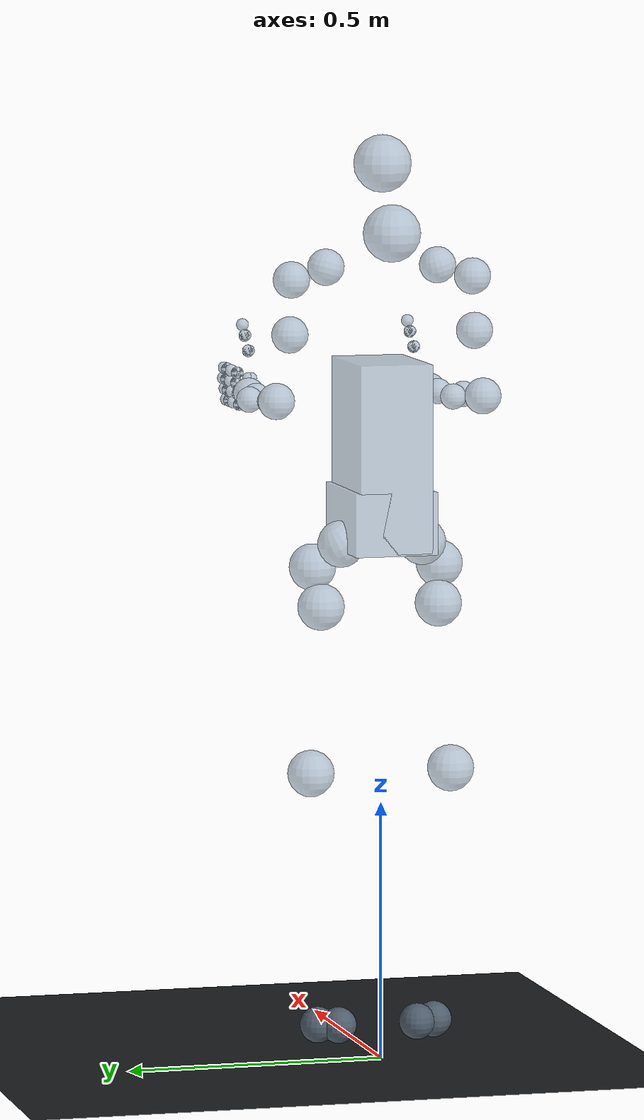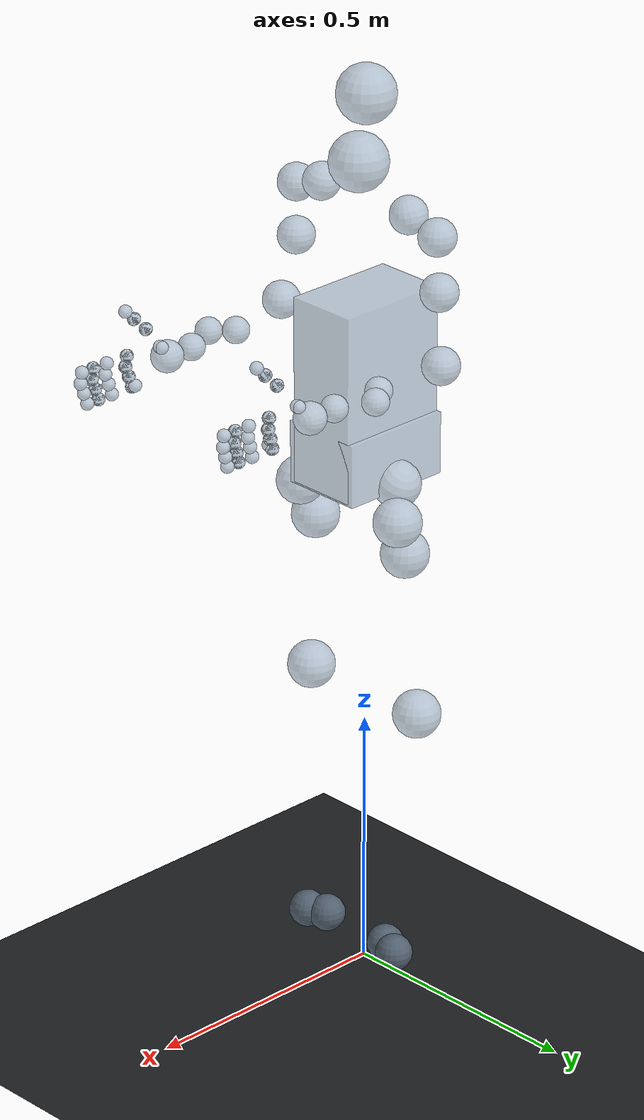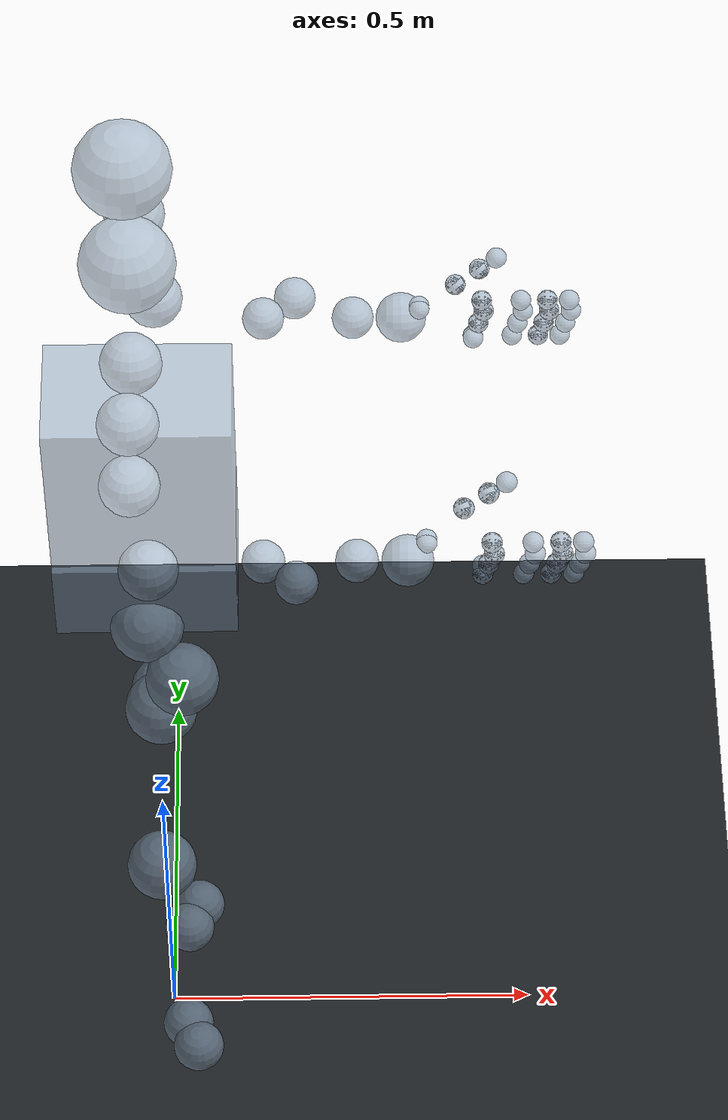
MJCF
<?xml version='1.0' encoding='utf-8'?>
<mujoco model="h2_with_sharpa">
  <compiler angle="radian" />
  <option timestep="0.008333333" gravity="0 0 -9.81" />
  <default>
    <joint damping="0.3" armature="0.01" />
    <geom friction="0.8 0.01 0.001" density="250" />
  </default>
  <worldbody>
    <geom name="floor" type="plane" size="3 3 0.02" rgba="0.12 0.13 0.14 1" />
    <body name="pelvis" pos="0 0 1.05">
      <freejoint name="pelvis_freejoint" />
      <geom name="pelvis_proxy" type="box" size="0.11 0.08 0.06" rgba="0.55 0.65 0.75 0.55" />
      <body name="left_hip_pitch_link" pos="0 0.08038 -0.046407" quat="0.9659256678 -0.2588196364 0 0">
        <joint name="left_hip_pitch_joint" type="hinge" axis="0 1 0" damping="0.3" armature="0.01" limited="true" range="-2.4525975 2.7754225" />
        <geom name="left_hip_pitch_link_proxy" type="sphere" size="0.045" rgba="0.55 0.65 0.75 0.55" />
        <body name="left_hip_roll_link" pos="0.041774 0.0635 -0.019" quat="0.9659256678 0.2588196364 0 0">
          <joint name="left_hip_roll_joint" type="hinge" axis="1 0 0" damping="0.3" armature="0.01" limited="true" range="-0.467441 2.1688605" />
          <geom name="left_hip_roll_link_proxy" type="sphere" size="0.045" rgba="0.55 0.65 0.75 0.55" />
          <body name="left_hip_yaw_link" pos="-0.028187 -0.0095 -0.0737" quat="1 0 0 0">
            <joint name="left_hip_yaw_joint" type="hinge" axis="0 0 1" damping="0.3" armature="0.01" limited="true" range="-2.827 2.827" />
            <geom name="left_hip_yaw_link_proxy" type="sphere" size="0.045" rgba="0.55 0.65 0.75 0.55" />
            <body name="left_knee_link" pos="-0.010308 0.022549 -0.31959" quat="1 0 0 0">
              <joint name="left_knee_joint" type="hinge" axis="0 1 0" damping="0.3" armature="0.01" limited="true" range="-0.08725 2.53025" />
              <geom name="left_knee_link_proxy" type="sphere" size="0.045" rgba="0.55 0.65 0.75 0.55" />
              <body name="left_ankle_roll_link" pos="0.032719 -0.023002 -0.49662" quat="1 0 0 0">
                <joint name="left_ankle_roll_joint" type="hinge" axis="1 0 0" damping="0.3" armature="0.01" limited="true" range="-0.3490658503 0.2967059728" />
                <geom name="left_ankle_roll_link_proxy" type="sphere" size="0.035" rgba="0.55 0.65 0.75 0.55" />
                <body name="left_ankle_pitch_link" pos="-0.014516 -0.0373 0" quat="1 0 0 0">
                  <joint name="left_ankle_pitch_joint" type="hinge" axis="0 1 0" damping="0.3" armature="0.01" limited="true" range="-1.134464014 0.6108652381" />
                  <geom name="left_ankle_pitch_link_proxy" type="sphere" size="0.035" rgba="0.55 0.65 0.75 0.55" />
                </body>
              </body>
            </body>
          </body>
        </body>
      </body>
      <body name="right_hip_pitch_link" pos="0 -0.08038 -0.046407" quat="0.9659256678 0.2588196364 0 0">
        <joint name="right_hip_pitch_joint" type="hinge" axis="0 1 0" damping="0.3" armature="0.01" limited="true" range="-2.4525975 2.7754225" />
        <geom name="right_hip_pitch_link_proxy" type="sphere" size="0.045" rgba="0.55 0.65 0.75 0.55" />
        <body name="right_hip_roll_link" pos="0.041774 -0.0635 -0.019" quat="0.9659256678 -0.2588196364 0 0">
          <joint name="right_hip_roll_joint" type="hinge" axis="1 0 0" damping="0.3" armature="0.01" limited="true" range="-2.1688605 0.467441" />
          <geom name="right_hip_roll_link_proxy" type="sphere" size="0.045" rgba="0.55 0.65 0.75 0.55" />
          <body name="right_hip_yaw_link" pos="-0.028187 0.0095 -0.0737" quat="1 0 0 0">
            <joint name="right_hip_yaw_joint" type="hinge" axis="0 0 1" damping="0.3" armature="0.01" limited="true" range="-2.827 2.827" />
            <geom name="right_hip_yaw_link_proxy" type="sphere" size="0.045" rgba="0.55 0.65 0.75 0.55" />
            <body name="right_knee_link" pos="-0.010308 -0.022549 -0.31959" quat="1 0 0 0">
              <joint name="right_knee_joint" type="hinge" axis="0 1 0" damping="0.3" armature="0.01" limited="true" range="-0.08725 2.53025" />
              <geom name="right_knee_link_proxy" type="sphere" size="0.045" rgba="0.55 0.65 0.75 0.55" />
              <body name="right_ankle_roll_link" pos="0.032719 0.023002 -0.49662" quat="1 0 0 0">
                <joint name="right_ankle_roll_joint" type="hinge" axis="1 0 0" damping="0.3" armature="0.01" limited="true" range="-0.2967059728 0.3490658503" />
                <geom name="right_ankle_roll_link_proxy" type="sphere" size="0.035" rgba="0.55 0.65 0.75 0.55" />
                <body name="right_ankle_pitch_link" pos="-0.014516 0.0373 0" quat="1 0 0 0">
                  <joint name="right_ankle_pitch_joint" type="hinge" axis="0 1 0" damping="0.3" armature="0.01" limited="true" range="-1.134464014 0.6108652381" />
                  <geom name="right_ankle_pitch_link_proxy" type="sphere" size="0.035" rgba="0.55 0.65 0.75 0.55" />
                </body>
              </body>
            </body>
          </body>
        </body>
      </body>
      <body name="waist_yaw_link" pos="0 0 0.090537" quat="1 0 0 0">
        <joint name="waist_yaw_joint" type="hinge" axis="0 0 1" damping="0.3" armature="0.01" limited="true" range="-1.7453 1.7453" />
        <geom name="waist_yaw_link_proxy" type="sphere" size="0.025" rgba="0.55 0.65 0.75 0.55" />
        <body name="waist_roll_link" pos="0 0 0.0325" quat="1 0 0 0">
          <joint name="waist_roll_joint" type="hinge" axis="1 0 0" damping="0.3" armature="0.01" limited="true" range="-0.5236 0.5236" />
          <geom name="waist_roll_link_proxy" type="sphere" size="0.025" rgba="0.55 0.65 0.75 0.55" />
          <body name="torso_link" pos="0 0 0" quat="1 0 0 0">
            <joint name="waist_pitch_joint" type="hinge" axis="0 1 0" damping="0.3" armature="0.01" limited="true" range="-0.43633 0.5236" />
            <geom name="torso_link_proxy" type="box" size="0.11 0.07 0.18" rgba="0.55 0.65 0.75 0.55" />
            <body name="head_pitch_link" pos="-0.0001147 -0.0189 0.4218" quat="1 0 0 0">
              <joint name="head_pitch_joint" type="hinge" axis="0 1 0" damping="0.3" armature="0.01" limited="true" range="-0.5236 0.83775" />
              <geom name="head_pitch_link_proxy" type="sphere" size="0.055" rgba="0.55 0.65 0.75 0.55" />
              <body name="head_yaw_link" pos="0 0.0189 0.1335" quat="1 0 0 0">
                <joint name="head_yaw_joint" type="hinge" axis="0 0 1" damping="0.3" armature="0.01" limited="true" range="-1.7453 1.7453" />
                <geom name="head_yaw_link_proxy" type="sphere" size="0.055" rgba="0.55 0.65 0.75 0.55" />
              </body>
            </body>
            <body name="left_shoulder_pitch_link" pos="0.0030848 0.11 0.36008" quat="0.9909591134 0.134164211 0 0">
              <joint name="left_shoulder_pitch_joint" type="hinge" axis="0 1 0" damping="0.3" armature="0.01" limited="true" range="-2.618 1.833" />
              <geom name="left_shoulder_pitch_link_proxy" type="sphere" size="0.035" rgba="0.55 0.65 0.75 0.55" />
              <body name="left_shoulder_roll_link" pos="-0.0032074 0.059938 -0.039865" quat="0.9909591134 -0.134164211 0 0">
                <joint name="left_shoulder_roll_joint" type="hinge" axis="1 0 0" damping="0.3" armature="0.01" limited="true" range="-0.517 2.494" />
                <geom name="left_shoulder_roll_link_proxy" type="sphere" size="0.035" rgba="0.55 0.65 0.75 0.55" />
                <body name="left_shoulder_yaw_link" pos="-0.0025601 0.0036752 -0.10421" quat="1 0 0 0">
                  <joint name="left_shoulder_yaw_joint" type="hinge" axis="0 0 1" damping="0.3" armature="0.01" limited="true" range="-2.618 2.618" />
                  <geom name="left_shoulder_yaw_link_proxy" type="sphere" size="0.035" rgba="0.55 0.65 0.75 0.55" />
                  <body name="left_elbow_link" pos="0.016655 0.02211 -0.12792" quat="1 0 0 0">
                    <joint name="left_elbow_joint" type="hinge" axis="0 1 0" damping="0.3" armature="0.01" limited="true" range="-0.986 3.071" />
                    <geom name="left_elbow_link_proxy" type="sphere" size="0.035" rgba="0.55 0.65 0.75 0.55" />
                    <body name="left_wrist_roll_link" pos="0.13119 -0.021497 -0.013769" quat="1 0 0 0">
                      <joint name="left_wrist_roll_joint" type="hinge" axis="1 0 0" damping="0.3" armature="0.01" limited="true" range="-2.618 2.618" />
                      <geom name="left_wrist_roll_link_proxy" type="sphere" size="0.025" rgba="0.55 0.65 0.75 0.55" />
                      <body name="left_wrist_pitch_link" pos="0.037994 0.031144 0.00045104" quat="1 0 0 0">
                        <joint name="left_wrist_pitch_joint" type="hinge" axis="0 1 0" damping="0.3" armature="0.01" limited="true" range="-0.576 0.576" />
                        <geom name="left_wrist_pitch_link_proxy" type="sphere" size="0.025" rgba="0.55 0.65 0.75 0.55" />
                        <body name="left_wrist_yaw_link" pos="0.069283 -0.031045 -0.0006247" quat="1 0 0 0">
                          <joint name="left_wrist_yaw_joint" type="hinge" axis="0 0 1" damping="0.3" armature="0.01" limited="true" range="-1.22 1.22" />
                          <geom name="left_wrist_yaw_link_proxy" type="sphere" size="0.025" rgba="0.55 0.65 0.75 0.55" />
                          <body name="left_hand_C_MC" pos="0.05771524 0 -0.00014865" quat="0.4995999986 -0.5000016781 0.5003963282 -0.5000016781">
                            <geom name="left_hand_C_MC_proxy" type="sphere" size="0.03" rgba="0.55 0.65 0.75 0.55" />
                            <body name="left_thumb_CMC_VL" pos="0.01 -0.026 0.0214" quat="0.7071054825 0 0 -0.7071080799">
                              <joint name="left_thumb_CMC_FE" type="hinge" axis="0 0 1" damping="0.3" armature="0.01" limited="true" range="-0.1745 1.9199" />
                              <geom name="left_thumb_CMC_VL_proxy" type="sphere" size="0.012" rgba="0.55 0.65 0.75 0.55" />
                              <body name="left_thumb_MC" pos="0 -0.005 0" quat="0.6532800341 0.6532824338 -0.270598153 0.270599147">
                                <joint name="left_thumb_CMC_AA" type="hinge" axis="0 0 1" damping="0.3" armature="0.01" limited="true" range="-0.3491 0.3491" />
                                <geom name="left_thumb_MC_proxy" type="sphere" size="0.012" rgba="0.55 0.65 0.75 0.55" />
                                <body name="left_thumb_MCP_VL" pos="0.065 -0.006 -0.010392" quat="0.9659256678 -0.2588196364 0 0">
                                  <joint name="left_thumb_MCP_FE" type="hinge" axis="0 0 1" damping="0.3" armature="0.01" limited="true" range="-0.5236 1.3963" />
                                  <geom name="left_thumb_MCP_VL_proxy" type="sphere" size="0.012" rgba="0.55 0.65 0.75 0.55" />
                                  <body name="left_thumb_PP" pos="0 0 0" quat="0.7071054825 0.7071080799 0 0">
                                    <joint name="left_thumb_MCP_AA" type="hinge" axis="0 0 1" damping="0.3" armature="0.01" limited="true" range="-0.3491 0.3491" />
                                    <geom name="left_thumb_PP_proxy" type="sphere" size="0.012" rgba="0.55 0.65 0.75 0.55" />
                                    <body name="left_thumb_DP" pos="0.039 0 0" quat="0.7071054825 -0.7071080799 0 0">
                                      <joint name="left_thumb_IP" type="hinge" axis="0 0 1" damping="0.3" armature="0.01" limited="true" range="0 1.7453" />
                                      <geom name="left_thumb_DP_proxy" type="sphere" size="0.012" rgba="0.55 0.65 0.75 0.55" />
                                      <body name="left_thumb_elastomer" pos="0 0 0" quat="0.5 0.5 -0.5 0.5">
                                        <geom name="left_thumb_elastomer_proxy" type="sphere" size="0.012" rgba="0.55 0.65 0.75 0.55" />
                                        <body name="left_thumb_fingertip" pos="0 -0.02761093463 0" quat="-0.5 -0.5 -0.5 0.5">
                                          <geom name="left_thumb_fingertip_proxy" type="sphere" size="0.012" rgba="0.55 0.65 0.75 0.55" />
                                        </body>
                                      </body>
                                    </body>
                                  </body>
                                </body>
                              </body>
                            </body>
                            <body name="left_index_MCP_VL" pos="0.001 -0.0303 0.0959" quat="-0.4999981634 0.5000018366 0.5 0.5">
                              <joint name="left_index_MCP_FE" type="hinge" axis="0 0 1" damping="0.3" armature="0.01" limited="true" range="-0.17453293 1.5708" />
                              <geom name="left_index_MCP_VL_proxy" type="sphere" size="0.012" rgba="0.55 0.65 0.75 0.55" />
                              <body name="left_index_PP" pos="0 0 0" quat="0.7071054825 0.7071080799 0 0">
                                <joint name="left_index_MCP_AA" type="hinge" axis="0 0 1" damping="0.3" armature="0.01" limited="true" range="-0.3491 0.3491" />
                                <geom name="left_index_PP_proxy" type="sphere" size="0.012" rgba="0.55 0.65 0.75 0.55" />
                                <body name="left_index_MP" pos="0.047 0 0" quat="0.7071054825 -0.7071080799 0 0">
                                  <joint name="left_index_PIP" type="hinge" axis="0 0 1" damping="0.3" armature="0.01" limited="true" range="0 1.7453" />
                                  <geom name="left_index_MP_proxy" type="sphere" size="0.012" rgba="0.55 0.65 0.75 0.55" />
                                  <body name="left_index_DP" pos="0.0315 0 0" quat="1 0 0 0">
                                    <joint name="left_index_DIP" type="hinge" axis="0 0 1" damping="0.3" armature="0.01" limited="true" range="0 1.3963" />
                                    <geom name="left_index_DP_proxy" type="sphere" size="0.012" rgba="0.55 0.65 0.75 0.55" />
                                    <body name="left_index_elastomer" pos="0 0 0" quat="0.5 0.5 -0.5 0.5">
                                      <geom name="left_index_elastomer_proxy" type="sphere" size="0.012" rgba="0.55 0.65 0.75 0.55" />
                                      <body name="left_index_fingertip" pos="0 -0.02600925743 0" quat="-0.5 -0.5 -0.5 0.5">
                                        <geom name="left_index_fingertip_proxy" type="sphere" size="0.012" rgba="0.55 0.65 0.75 0.55" />
                                      </body>
                                    </body>
                                  </body>
                                </body>
                              </body>
                            </body>
                            <body name="left_middle_MCP_VL" pos="0 -0.01 0.0989" quat="-0.4999981634 0.5000018366 0.5 0.5">
                              <joint name="left_middle_MCP_FE" type="hinge" axis="0 0 1" damping="0.3" armature="0.01" limited="true" range="-0.17453293 1.5708" />
                              <geom name="left_middle_MCP_VL_proxy" type="sphere" size="0.012" rgba="0.55 0.65 0.75 0.55" />
                              <body name="left_middle_PP" pos="0 0 0" quat="0.7071054825 0.7071080799 0 0">
                                <joint name="left_middle_MCP_AA" type="hinge" axis="0 0 1" damping="0.3" armature="0.01" limited="true" range="-0.3491 0.3491" />
                                <geom name="left_middle_PP_proxy" type="sphere" size="0.012" rgba="0.55 0.65 0.75 0.55" />
                                <body name="left_middle_MP" pos="0.047 0 0" quat="0.7071054825 -0.7071080799 0 0">
                                  <joint name="left_middle_PIP" type="hinge" axis="0 0 1" damping="0.3" armature="0.01" limited="true" range="0 1.7453" />
                                  <geom name="left_middle_MP_proxy" type="sphere" size="0.012" rgba="0.55 0.65 0.75 0.55" />
                                  <body name="left_middle_DP" pos="0.0315 0 0" quat="1 0 0 0">
                                    <joint name="left_middle_DIP" type="hinge" axis="0 0 1" damping="0.3" armature="0.01" limited="true" range="0 1.3963" />
                                    <geom name="left_middle_DP_proxy" type="sphere" size="0.012" rgba="0.55 0.65 0.75 0.55" />
                                    <body name="left_middle_elastomer" pos="0 0 0" quat="0.5 0.5 -0.5 0.5">
                                      <geom name="left_middle_elastomer_proxy" type="sphere" size="0.012" rgba="0.55 0.65 0.75 0.55" />
                                      <body name="left_middle_fingertip" pos="0 -0.02600925743 0" quat="-0.5 -0.5 -0.5 0.5">
                                        <geom name="left_middle_fingertip_proxy" type="sphere" size="0.012" rgba="0.55 0.65 0.75 0.55" />
                                      </body>
                                    </body>
                                  </body>
                                </body>
                              </body>
                            </body>
                            <body name="left_ring_MCP_VL" pos="0.0015 0.0103 0.0929" quat="-0.4999981634 0.5000018366 0.5 0.5">
                              <joint name="left_ring_MCP_FE" type="hinge" axis="0 0 1" damping="0.3" armature="0.01" limited="true" range="-0.17453293 1.5708" />
                              <geom name="left_ring_MCP_VL_proxy" type="sphere" size="0.012" rgba="0.55 0.65 0.75 0.55" />
                              <body name="left_ring_PP" pos="0 0 0" quat="0.7071054825 0.7071080799 0 0">
                                <joint name="left_ring_MCP_AA" type="hinge" axis="0 0 1" damping="0.3" armature="0.01" limited="true" range="-0.3491 0.3491" />
                                <geom name="left_ring_PP_proxy" type="sphere" size="0.012" rgba="0.55 0.65 0.75 0.55" />
                                <body name="left_ring_MP" pos="0.047 0 0" quat="0.7071054825 -0.7071080799 0 0">
                                  <joint name="left_ring_PIP" type="hinge" axis="0 0 1" damping="0.3" armature="0.01" limited="true" range="0 1.7453" />
                                  <geom name="left_ring_MP_proxy" type="sphere" size="0.012" rgba="0.55 0.65 0.75 0.55" />
                                  <body name="left_ring_DP" pos="0.0315 0 0" quat="1 0 0 0">
                                    <joint name="left_ring_DIP" type="hinge" axis="0 0 1" damping="0.3" armature="0.01" limited="true" range="0 1.3963" />
                                    <geom name="left_ring_DP_proxy" type="sphere" size="0.012" rgba="0.55 0.65 0.75 0.55" />
                                    <body name="left_ring_elastomer" pos="0 0 0" quat="0.4999981634 0.5 -0.5 0.5000018366">
                                      <geom name="left_ring_elastomer_proxy" type="sphere" size="0.012" rgba="0.55 0.65 0.75 0.55" />
                                      <body name="left_ring_fingertip" pos="0 -0.02600925743 0" quat="-0.5 -0.5 -0.5 0.5">
                                        <geom name="left_ring_fingertip_proxy" type="sphere" size="0.012" rgba="0.55 0.65 0.75 0.55" />
                                      </body>
                                    </body>
                                  </body>
                                </body>
                              </body>
                            </body>
                            <body name="left_pinky_MC" pos="0.01136 0.0263 0.0869" quat="-1.349243573e-11 -3.673205103e-06 1 3.673205103e-06">
                              <joint name="left_pinky_CMC" type="hinge" axis="0 0 1" damping="0.3" armature="0.01" limited="true" range="0 0.2618" />
                              <geom name="left_pinky_MC_proxy" type="sphere" size="0.012" rgba="0.55 0.65 0.75 0.55" />
                              <body name="left_pinky_MCP_VL" pos="0.00836 0.0048 0" quat="0.4999981634 -0.5 0.5 0.5000018366">
                                <joint name="left_pinky_MCP_FE" type="hinge" axis="0 0 1" damping="0.3" armature="0.01" limited="true" range="-0.17453293 1.5708" />
                                <geom name="left_pinky_MCP_VL_proxy" type="sphere" size="0.012" rgba="0.55 0.65 0.75 0.55" />
                                <body name="left_pinky_PP" pos="0 0 0" quat="0.7071054825 0.7071080799 0 0">
                                  <joint name="left_pinky_MCP_AA" type="hinge" axis="0 0 1" damping="0.3" armature="0.01" limited="true" range="-0.3491 0.3491" />
                                  <geom name="left_pinky_PP_proxy" type="sphere" size="0.012" rgba="0.55 0.65 0.75 0.55" />
                                  <body name="left_pinky_MP" pos="0.047 0 0" quat="0.7071054825 -0.7071080799 0 0">
                                    <joint name="left_pinky_PIP" type="hinge" axis="0 0 1" damping="0.3" armature="0.01" limited="true" range="0 1.7453" />
                                    <geom name="left_pinky_MP_proxy" type="sphere" size="0.012" rgba="0.55 0.65 0.75 0.55" />
                                    <body name="left_pinky_DP" pos="0.0315 0 0" quat="1 0 0 0">
                                      <joint name="left_pinky_DIP" type="hinge" axis="0 0 1" damping="0.3" armature="0.01" limited="true" range="0 1.3963" />
                                      <geom name="left_pinky_DP_proxy" type="sphere" size="0.012" rgba="0.55 0.65 0.75 0.55" />
                                      <body name="left_pinky_elastomer" pos="0 0 0" quat="0.5 0.5 -0.5 0.5">
                                        <geom name="left_pinky_elastomer_proxy" type="sphere" size="0.012" rgba="0.55 0.65 0.75 0.55" />
                                        <body name="left_pinky_fingertip" pos="0 -0.02600925743 0" quat="-0.5 -0.5 -0.5 0.5">
                                          <geom name="left_pinky_fingertip_proxy" type="sphere" size="0.012" rgba="0.55 0.65 0.75 0.55" />
                                        </body>
                                      </body>
                                    </body>
                                  </body>
                                </body>
                              </body>
                            </body>
                          </body>
                        </body>
                      </body>
                    </body>
                  </body>
                </body>
              </body>
            </body>
            <body name="right_shoulder_pitch_link" pos="0.0030848 -0.11 0.36008" quat="0.9909591134 -0.134164211 0 0">
              <joint name="right_shoulder_pitch_joint" type="hinge" axis="0 1 0" damping="0.3" armature="0.01" limited="true" range="-2.618 1.833" />
              <geom name="right_shoulder_pitch_link_proxy" type="sphere" size="0.035" rgba="0.55 0.65 0.75 0.55" />
              <body name="right_shoulder_roll_link" pos="-0.0032074 -0.059938 -0.039865" quat="0.9909591134 0.134164211 0 0">
                <joint name="right_shoulder_roll_joint" type="hinge" axis="1 0 0" damping="0.3" armature="0.01" limited="true" range="-2.494 0.517" />
                <geom name="right_shoulder_roll_link_proxy" type="sphere" size="0.035" rgba="0.55 0.65 0.75 0.55" />
                <body name="right_shoulder_yaw_link" pos="-0.0025601 -0.0036752 -0.10421" quat="1 0 0 0">
                  <joint name="right_shoulder_yaw_joint" type="hinge" axis="0 0 1" damping="0.3" armature="0.01" limited="true" range="-2.618 2.618" />
                  <geom name="right_shoulder_yaw_link_proxy" type="sphere" size="0.035" rgba="0.55 0.65 0.75 0.55" />
                  <body name="right_elbow_link" pos="0.016655 -0.02211 -0.12792" quat="1 0 0 0">
                    <joint name="right_elbow_joint" type="hinge" axis="0 1 0" damping="0.3" armature="0.01" limited="true" range="-0.986 3.071" />
                    <geom name="right_elbow_link_proxy" type="sphere" size="0.035" rgba="0.55 0.65 0.75 0.55" />
                    <body name="right_wrist_roll_link" pos="0.13119 0.021497 -0.013769" quat="1 0 0 0">
                      <joint name="right_wrist_roll_joint" type="hinge" axis="1 0 0" damping="0.3" armature="0.01" limited="true" range="-2.618 2.618" />
                      <geom name="right_wrist_roll_link_proxy" type="sphere" size="0.025" rgba="0.55 0.65 0.75 0.55" />
                      <body name="right_wrist_pitch_link" pos="0.037994 -0.031144 0.00045104" quat="1 0 0 0">
                        <joint name="right_wrist_pitch_joint" type="hinge" axis="0 1 0" damping="0.3" armature="0.01" limited="true" range="-0.576 0.576" />
                        <geom name="right_wrist_pitch_link_proxy" type="sphere" size="0.025" rgba="0.55 0.65 0.75 0.55" />
                        <body name="right_wrist_yaw_link" pos="0.069283 0.031045 -0.0006247" quat="1 0 0 0">
                          <joint name="right_wrist_yaw_joint" type="hinge" axis="0 0 1" damping="0.3" armature="0.01" limited="true" range="-1.22 1.22" />
                          <geom name="right_wrist_yaw_link_proxy" type="sphere" size="0.025" rgba="0.55 0.65 0.75 0.55" />
                          <body name="right_hand_C_MC" pos="0.05824125 0 -0.00017221" quat="0.5003981634 0.4999998415 0.4996018366 0.4999998415">
                            <geom name="right_hand_C_MC_proxy" type="sphere" size="0.03" rgba="0.55 0.65 0.75 0.55" />
                            <body name="right_thumb_CMC_VL" pos="0.01 0.026 0.0214" quat="-2.597343467e-06 0.7071054825 0.7071080799 -2.597353008e-06">
                              <joint name="right_thumb_CMC_FE" type="hinge" axis="0 0 1" damping="0.3" armature="0.01" limited="true" range="-0.1745 1.9199" />
                              <geom name="right_thumb_CMC_VL_proxy" type="sphere" size="0.012" rgba="0.55 0.65 0.75 0.55" />
                              <body name="right_thumb_MC" pos="0 -0.005 0" quat="0.6532800341 -0.6532824338 0.270598153 0.270599147">
                                <joint name="right_thumb_CMC_AA" type="hinge" axis="0 0 1" damping="0.3" armature="0.01" limited="true" range="-0.3491 0.3491" />
                                <geom name="right_thumb_MC_proxy" type="sphere" size="0.012" rgba="0.55 0.65 0.75 0.55" />
                                <body name="right_thumb_MCP_VL" pos="0.065 -0.006 0.010392" quat="0.9659256678 0.2588196364 0 0">
                                  <joint name="right_thumb_MCP_FE" type="hinge" axis="0 0 1" damping="0.3" armature="0.01" limited="true" range="-0.5236 1.3963" />
                                  <geom name="right_thumb_MCP_VL_proxy" type="sphere" size="0.012" rgba="0.55 0.65 0.75 0.55" />
                                  <body name="right_thumb_PP" pos="0 0 0" quat="0.7071054825 -0.7071080799 0 0">
                                    <joint name="right_thumb_MCP_AA" type="hinge" axis="0 0 1" damping="0.3" armature="0.01" limited="true" range="-0.3491 0.3491" />
                                    <geom name="right_thumb_PP_proxy" type="sphere" size="0.012" rgba="0.55 0.65 0.75 0.55" />
                                    <body name="right_thumb_DP" pos="0.039 0 0" quat="0.7071054825 0.7071080799 0 0">
                                      <joint name="right_thumb_IP" type="hinge" axis="0 0 1" damping="0.3" armature="0.01" limited="true" range="0 1.7453" />
                                      <geom name="right_thumb_DP_proxy" type="sphere" size="0.012" rgba="0.55 0.65 0.75 0.55" />
                                      <body name="right_thumb_elastomer" pos="0 0 0" quat="0.4999981634 0.5 -0.5 0.5000018366">
                                        <geom name="right_thumb_elastomer_proxy" type="sphere" size="0.012" rgba="0.55 0.65 0.75 0.55" />
                                        <body name="right_thumb_fingertip" pos="0 -0.027611 0" quat="-0.4999981634 -0.5 -0.5 0.5000018366">
                                          <geom name="right_thumb_fingertip_proxy" type="sphere" size="0.012" rgba="0.55 0.65 0.75 0.55" />
                                        </body>
                                      </body>
                                    </body>
                                  </body>
                                </body>
                              </body>
                            </body>
                            <body name="right_index_MCP_VL" pos="0.001 0.0303 0.0959" quat="-0.4999981634 0.5000018366 0.5 0.5">
                              <joint name="right_index_MCP_FE" type="hinge" axis="0 0 1" damping="0.3" armature="0.01" limited="true" range="-0.17453293 1.5708" />
                              <geom name="right_index_MCP_VL_proxy" type="sphere" size="0.012" rgba="0.55 0.65 0.75 0.55" />
                              <body name="right_index_PP" pos="0 0 0" quat="0.7071054825 -0.7071080799 0 0">
                                <joint name="right_index_MCP_AA" type="hinge" axis="0 0 1" damping="0.3" armature="0.01" limited="true" range="-0.3491 0.3491" />
                                <geom name="right_index_PP_proxy" type="sphere" size="0.012" rgba="0.55 0.65 0.75 0.55" />
                                <body name="right_index_MP" pos="0.047 0 0" quat="0.7071054825 0.7071080799 0 0">
                                  <joint name="right_index_PIP" type="hinge" axis="0 0 1" damping="0.3" armature="0.01" limited="true" range="0 1.7453" />
                                  <geom name="right_index_MP_proxy" type="sphere" size="0.012" rgba="0.55 0.65 0.75 0.55" />
                                  <body name="right_index_DP" pos="0.0315 0 0" quat="1 0 0 0">
                                    <joint name="right_index_DIP" type="hinge" axis="0 0 1" damping="0.3" armature="0.01" limited="true" range="0 1.3963" />
                                    <geom name="right_index_DP_proxy" type="sphere" size="0.012" rgba="0.55 0.65 0.75 0.55" />
                                    <body name="right_index_elastomer" pos="0 0 0" quat="0.4999981634 0.5 -0.5 0.5000018366">
                                      <geom name="right_index_elastomer_proxy" type="sphere" size="0.012" rgba="0.55 0.65 0.75 0.55" />
                                      <body name="right_index_fingertip" pos="0 -0.026009 0" quat="-0.4999981634 -0.5 -0.5 0.5000018366">
                                        <geom name="right_index_fingertip_proxy" type="sphere" size="0.012" rgba="0.55 0.65 0.75 0.55" />
                                      </body>
                                    </body>
                                  </body>
                                </body>
                              </body>
                            </body>
                            <body name="right_middle_MCP_VL" pos="0 0.01 0.0989" quat="-0.4999981634 0.5000018366 0.5 0.5">
                              <joint name="right_middle_MCP_FE" type="hinge" axis="0 0 1" damping="0.3" armature="0.01" limited="true" range="-0.17453293 1.5708" />
                              <geom name="right_middle_MCP_VL_proxy" type="sphere" size="0.012" rgba="0.55 0.65 0.75 0.55" />
                              <body name="right_middle_PP" pos="0 0 0" quat="0.7071054825 -0.7071080799 0 0">
                                <joint name="right_middle_MCP_AA" type="hinge" axis="0 0 1" damping="0.3" armature="0.01" limited="true" range="-0.3491 0.3491" />
                                <geom name="right_middle_PP_proxy" type="sphere" size="0.012" rgba="0.55 0.65 0.75 0.55" />
                                <body name="right_middle_MP" pos="0.047 0 0" quat="0.7071054825 0.7071080799 0 0">
                                  <joint name="right_middle_PIP" type="hinge" axis="0 0 1" damping="0.3" armature="0.01" limited="true" range="0 1.7453" />
                                  <geom name="right_middle_MP_proxy" type="sphere" size="0.012" rgba="0.55 0.65 0.75 0.55" />
                                  <body name="right_middle_DP" pos="0.0315 0 0" quat="1 0 0 0">
                                    <joint name="right_middle_DIP" type="hinge" axis="0 0 1" damping="0.3" armature="0.01" limited="true" range="0 1.3963" />
                                    <geom name="right_middle_DP_proxy" type="sphere" size="0.012" rgba="0.55 0.65 0.75 0.55" />
                                    <body name="right_middle_elastomer" pos="0 0 0" quat="0.5 0.5 -0.5 0.5">
                                      <geom name="right_middle_elastomer_proxy" type="sphere" size="0.012" rgba="0.55 0.65 0.75 0.55" />
                                      <body name="right_middle_fingertip" pos="0 -0.02600925743 0" quat="-0.5 -0.5 -0.5 0.5">
                                        <geom name="right_middle_fingertip_proxy" type="sphere" size="0.012" rgba="0.55 0.65 0.75 0.55" />
                                      </body>
                                    </body>
                                  </body>
                                </body>
                              </body>
                            </body>
                            <body name="right_ring_MCP_VL" pos="0.0015 -0.0103 0.0929" quat="-0.4999981634 0.5000018366 0.5 0.5">
                              <joint name="right_ring_MCP_FE" type="hinge" axis="0 0 1" damping="0.3" armature="0.01" limited="true" range="-0.17453293 1.5708" />
                              <geom name="right_ring_MCP_VL_proxy" type="sphere" size="0.012" rgba="0.55 0.65 0.75 0.55" />
                              <body name="right_ring_PP" pos="0 0 0" quat="0.7071054825 -0.7071080799 0 0">
                                <joint name="right_ring_MCP_AA" type="hinge" axis="0 0 1" damping="0.3" armature="0.01" limited="true" range="-0.3491 0.3491" />
                                <geom name="right_ring_PP_proxy" type="sphere" size="0.012" rgba="0.55 0.65 0.75 0.55" />
                                <body name="right_ring_MP" pos="0.047 0 0" quat="0.7071054825 0.7071080799 0 0">
                                  <joint name="right_ring_PIP" type="hinge" axis="0 0 1" damping="0.3" armature="0.01" limited="true" range="0 1.7453" />
                                  <geom name="right_ring_MP_proxy" type="sphere" size="0.012" rgba="0.55 0.65 0.75 0.55" />
                                  <body name="right_ring_DP" pos="0.0315 0 0" quat="1 0 0 0">
                                    <joint name="right_ring_DIP" type="hinge" axis="0 0 1" damping="0.3" armature="0.01" limited="true" range="0 1.3963" />
                                    <geom name="right_ring_DP_proxy" type="sphere" size="0.012" rgba="0.55 0.65 0.75 0.55" />
                                    <body name="right_ring_elastomer" pos="0 0 0" quat="0.4999981634 0.5 -0.5 0.5000018366">
                                      <geom name="right_ring_elastomer_proxy" type="sphere" size="0.012" rgba="0.55 0.65 0.75 0.55" />
                                      <body name="right_ring_fingertip" pos="0 -0.02600925743 0" quat="-0.5 -0.5 -0.5 0.5">
                                        <geom name="right_ring_fingertip_proxy" type="sphere" size="0.012" rgba="0.55 0.65 0.75 0.55" />
                                      </body>
                                    </body>
                                  </body>
                                </body>
                              </body>
                            </body>
                            <body name="right_pinky_MC" pos="0.01136 -0.0263 0.0869" quat="-3.673205103e-06 0 0 1">
                              <joint name="right_pinky_CMC" type="hinge" axis="0 0 1" damping="0.3" armature="0.01" limited="true" range="0 0.2618" />
                              <geom name="right_pinky_MC_proxy" type="sphere" size="0.012" rgba="0.55 0.65 0.75 0.55" />
                              <body name="right_pinky_MCP_VL" pos="0.00836 0.0048 0" quat="0.4999981634 0.5 -0.5 0.5000018366">
                                <joint name="right_pinky_MCP_FE" type="hinge" axis="0 0 1" damping="0.3" armature="0.01" limited="true" range="-0.17453293 1.5708" />
                                <geom name="right_pinky_MCP_VL_proxy" type="sphere" size="0.012" rgba="0.55 0.65 0.75 0.55" />
                                <body name="right_pinky_PP" pos="0 0 0" quat="0.7071054825 -0.7071080799 0 0">
                                  <joint name="right_pinky_MCP_AA" type="hinge" axis="0 0 1" damping="0.3" armature="0.01" limited="true" range="-0.3491 0.3491" />
                                  <geom name="right_pinky_PP_proxy" type="sphere" size="0.012" rgba="0.55 0.65 0.75 0.55" />
                                  <body name="right_pinky_MP" pos="0.047 0 0" quat="0.7071054825 0.7071080799 0 0">
                                    <joint name="right_pinky_PIP" type="hinge" axis="0 0 1" damping="0.3" armature="0.01" limited="true" range="0 1.7453" />
                                    <geom name="right_pinky_MP_proxy" type="sphere" size="0.012" rgba="0.55 0.65 0.75 0.55" />
                                    <body name="right_pinky_DP" pos="0.0315 0 0" quat="1 0 0 0">
                                      <joint name="right_pinky_DIP" type="hinge" axis="0 0 1" damping="0.3" armature="0.01" limited="true" range="0 1.3963" />
                                      <geom name="right_pinky_DP_proxy" type="sphere" size="0.012" rgba="0.55 0.65 0.75 0.55" />
                                      <body name="right_pinky_elastomer" pos="0 0 0" quat="0.4999981634 0.5 -0.5 0.5000018366">
                                        <geom name="right_pinky_elastomer_proxy" type="sphere" size="0.012" rgba="0.55 0.65 0.75 0.55" />
                                        <body name="right_pinky_fingertip" pos="0 -0.026009 0" quat="-0.4999981634 -0.5 -0.5 0.5000018366">
                                          <geom name="right_pinky_fingertip_proxy" type="sphere" size="0.012" rgba="0.55 0.65 0.75 0.55" />
                                        </body>
                                      </body>
                                    </body>
                                  </body>
                                </body>
                              </body>
                            </body>
                          </body>
                        </body>
                      </body>
                    </body>
                  </body>
                </body>
              </body>
            </body>
          </body>
        </body>
      </body>
    </body>
  </worldbody>
  <actuator>
    <position name="left_hip_pitch_joint_position" joint="left_hip_pitch_joint" kp="15" ctrlrange="-2.4525975 2.7754225" />
    <position name="left_hip_roll_joint_position" joint="left_hip_roll_joint" kp="15" ctrlrange="-0.467441 2.1688605" />
    <position name="left_hip_yaw_joint_position" joint="left_hip_yaw_joint" kp="15" ctrlrange="-2.827 2.827" />
    <position name="left_knee_joint_position" joint="left_knee_joint" kp="15" ctrlrange="-0.08725 2.53025" />
    <position name="left_ankle_roll_joint_position" joint="left_ankle_roll_joint" kp="15" ctrlrange="-0.3490658503 0.2967059728" />
    <position name="left_ankle_pitch_joint_position" joint="left_ankle_pitch_joint" kp="15" ctrlrange="-1.134464014 0.6108652381" />
    <position name="right_hip_pitch_joint_position" joint="right_hip_pitch_joint" kp="15" ctrlrange="-2.4525975 2.7754225" />
    <position name="right_hip_roll_joint_position" joint="right_hip_roll_joint" kp="15" ctrlrange="-2.1688605 0.467441" />
    <position name="right_hip_yaw_joint_position" joint="right_hip_yaw_joint" kp="15" ctrlrange="-2.827 2.827" />
    <position name="right_knee_joint_position" joint="right_knee_joint" kp="15" ctrlrange="-0.08725 2.53025" />
    <position name="right_ankle_roll_joint_position" joint="right_ankle_roll_joint" kp="15" ctrlrange="-0.2967059728 0.3490658503" />
    <position name="right_ankle_pitch_joint_position" joint="right_ankle_pitch_joint" kp="15" ctrlrange="-1.134464014 0.6108652381" />
    <position name="waist_yaw_joint_position" joint="waist_yaw_joint" kp="15" ctrlrange="-1.7453 1.7453" />
    <position name="waist_roll_joint_position" joint="waist_roll_joint" kp="15" ctrlrange="-0.5236 0.5236" />
    <position name="waist_pitch_joint_position" joint="waist_pitch_joint" kp="15" ctrlrange="-0.43633 0.5236" />
    <position name="head_pitch_joint_position" joint="head_pitch_joint" kp="15" ctrlrange="-0.5236 0.83775" />
    <position name="head_yaw_joint_position" joint="head_yaw_joint" kp="15" ctrlrange="-1.7453 1.7453" />
    <position name="left_shoulder_pitch_joint_position" joint="left_shoulder_pitch_joint" kp="15" ctrlrange="-2.618 1.833" />
    <position name="left_shoulder_roll_joint_position" joint="left_shoulder_roll_joint" kp="15" ctrlrange="-0.517 2.494" />
    <position name="left_shoulder_yaw_joint_position" joint="left_shoulder_yaw_joint" kp="15" ctrlrange="-2.618 2.618" />
    <position name="left_elbow_joint_position" joint="left_elbow_joint" kp="15" ctrlrange="-0.986 3.071" />
    <position name="left_wrist_roll_joint_position" joint="left_wrist_roll_joint" kp="15" ctrlrange="-2.618 2.618" />
    <position name="left_wrist_pitch_joint_position" joint="left_wrist_pitch_joint" kp="15" ctrlrange="-0.576 0.576" />
    <position name="left_wrist_yaw_joint_position" joint="left_wrist_yaw_joint" kp="15" ctrlrange="-1.22 1.22" />
    <position name="left_thumb_CMC_FE_position" joint="left_thumb_CMC_FE" kp="15" ctrlrange="-0.1745 1.9199" />
    <position name="left_thumb_CMC_AA_position" joint="left_thumb_CMC_AA" kp="15" ctrlrange="-0.3491 0.3491" />
    <position name="left_thumb_MCP_FE_position" joint="left_thumb_MCP_FE" kp="15" ctrlrange="-0.5236 1.3963" />
    <position name="left_thumb_MCP_AA_position" joint="left_thumb_MCP_AA" kp="15" ctrlrange="-0.3491 0.3491" />
    <position name="left_thumb_IP_position" joint="left_thumb_IP" kp="15" ctrlrange="0 1.7453" />
    <position name="left_index_MCP_FE_position" joint="left_index_MCP_FE" kp="15" ctrlrange="-0.17453293 1.5708" />
    <position name="left_index_MCP_AA_position" joint="left_index_MCP_AA" kp="15" ctrlrange="-0.3491 0.3491" />
    <position name="left_index_PIP_position" joint="left_index_PIP" kp="15" ctrlrange="0 1.7453" />
    <position name="left_index_DIP_position" joint="left_index_DIP" kp="15" ctrlrange="0 1.3963" />
    <position name="left_middle_MCP_FE_position" joint="left_middle_MCP_FE" kp="15" ctrlrange="-0.17453293 1.5708" />
    <position name="left_middle_MCP_AA_position" joint="left_middle_MCP_AA" kp="15" ctrlrange="-0.3491 0.3491" />
    <position name="left_middle_PIP_position" joint="left_middle_PIP" kp="15" ctrlrange="0 1.7453" />
    <position name="left_middle_DIP_position" joint="left_middle_DIP" kp="15" ctrlrange="0 1.3963" />
    <position name="left_ring_MCP_FE_position" joint="left_ring_MCP_FE" kp="15" ctrlrange="-0.17453293 1.5708" />
    <position name="left_ring_MCP_AA_position" joint="left_ring_MCP_AA" kp="15" ctrlrange="-0.3491 0.3491" />
    <position name="left_ring_PIP_position" joint="left_ring_PIP" kp="15" ctrlrange="0 1.7453" />
    <position name="left_ring_DIP_position" joint="left_ring_DIP" kp="15" ctrlrange="0 1.3963" />
    <position name="left_pinky_CMC_position" joint="left_pinky_CMC" kp="15" ctrlrange="0 0.2618" />
    <position name="left_pinky_MCP_FE_position" joint="left_pinky_MCP_FE" kp="15" ctrlrange="-0.17453293 1.5708" />
    <position name="left_pinky_MCP_AA_position" joint="left_pinky_MCP_AA" kp="15" ctrlrange="-0.3491 0.3491" />
    <position name="left_pinky_PIP_position" joint="left_pinky_PIP" kp="15" ctrlrange="0 1.7453" />
    <position name="left_pinky_DIP_position" joint="left_pinky_DIP" kp="15" ctrlrange="0 1.3963" />
    <position name="right_shoulder_pitch_joint_position" joint="right_shoulder_pitch_joint" kp="15" ctrlrange="-2.618 1.833" />
    <position name="right_shoulder_roll_joint_position" joint="right_shoulder_roll_joint" kp="15" ctrlrange="-2.494 0.517" />
    <position name="right_shoulder_yaw_joint_position" joint="right_shoulder_yaw_joint" kp="15" ctrlrange="-2.618 2.618" />
    <position name="right_elbow_joint_position" joint="right_elbow_joint" kp="15" ctrlrange="-0.986 3.071" />
    <position name="right_wrist_roll_joint_position" joint="right_wrist_roll_joint" kp="15" ctrlrange="-2.618 2.618" />
    <position name="right_wrist_pitch_joint_position" joint="right_wrist_pitch_joint" kp="15" ctrlrange="-0.576 0.576" />
    <position name="right_wrist_yaw_joint_position" joint="right_wrist_yaw_joint" kp="15" ctrlrange="-1.22 1.22" />
    <position name="right_thumb_CMC_FE_position" joint="right_thumb_CMC_FE" kp="15" ctrlrange="-0.1745 1.9199" />
    <position name="right_thumb_CMC_AA_position" joint="right_thumb_CMC_AA" kp="15" ctrlrange="-0.3491 0.3491" />
    <position name="right_thumb_MCP_FE_position" joint="right_thumb_MCP_FE" kp="15" ctrlrange="-0.5236 1.3963" />
    <position name="right_thumb_MCP_AA_position" joint="right_thumb_MCP_AA" kp="15" ctrlrange="-0.3491 0.3491" />
    <position name="right_thumb_IP_position" joint="right_thumb_IP" kp="15" ctrlrange="0 1.7453" />
    <position name="right_index_MCP_FE_position" joint="right_index_MCP_FE" kp="15" ctrlrange="-0.17453293 1.5708" />
    <position name="right_index_MCP_AA_position" joint="right_index_MCP_AA" kp="15" ctrlrange="-0.3491 0.3491" />
    <position name="right_index_PIP_position" joint="right_index_PIP" kp="15" ctrlrange="0 1.7453" />
    <position name="right_index_DIP_position" joint="right_index_DIP" kp="15" ctrlrange="0 1.3963" />
    <position name="right_middle_MCP_FE_position" joint="right_middle_MCP_FE" kp="15" ctrlrange="-0.17453293 1.5708" />
    <position name="right_middle_MCP_AA_position" joint="right_middle_MCP_AA" kp="15" ctrlrange="-0.3491 0.3491" />
    <position name="right_middle_PIP_position" joint="right_middle_PIP" kp="15" ctrlrange="0 1.7453" />
    <position name="right_middle_DIP_position" joint="right_middle_DIP" kp="15" ctrlrange="0 1.3963" />
    <position name="right_ring_MCP_FE_position" joint="right_ring_MCP_FE" kp="15" ctrlrange="-0.17453293 1.5708" />
    <position name="right_ring_MCP_AA_position" joint="right_ring_MCP_AA" kp="15" ctrlrange="-0.3491 0.3491" />
    <position name="right_ring_PIP_position" joint="right_ring_PIP" kp="15" ctrlrange="0 1.7453" />
    <position name="right_ring_DIP_position" joint="right_ring_DIP" kp="15" ctrlrange="0 1.3963" />
    <position name="right_pinky_CMC_position" joint="right_pinky_CMC" kp="15" ctrlrange="0 0.2618" />
    <position name="right_pinky_MCP_FE_position" joint="right_pinky_MCP_FE" kp="15" ctrlrange="-0.17453293 1.5708" />
    <position name="right_pinky_MCP_AA_position" joint="right_pinky_MCP_AA" kp="15" ctrlrange="-0.3491 0.3491" />
    <position name="right_pinky_PIP_position" joint="right_pinky_PIP" kp="15" ctrlrange="0 1.7453" />
    <position name="right_pinky_DIP_position" joint="right_pinky_DIP" kp="15" ctrlrange="0 1.3963" />
  </actuator>
  <sensor>
    <jointpos name="left_hip_pitch_joint_pos" joint="left_hip_pitch_joint" />
    <jointpos name="left_hip_roll_joint_pos" joint="left_hip_roll_joint" />
    <jointpos name="left_hip_yaw_joint_pos" joint="left_hip_yaw_joint" />
    <jointpos name="left_knee_joint_pos" joint="left_knee_joint" />
    <jointpos name="left_ankle_roll_joint_pos" joint="left_ankle_roll_joint" />
    <jointpos name="left_ankle_pitch_joint_pos" joint="left_ankle_pitch_joint" />
    <jointpos name="right_hip_pitch_joint_pos" joint="right_hip_pitch_joint" />
    <jointpos name="right_hip_roll_joint_pos" joint="right_hip_roll_joint" />
    <jointpos name="right_hip_yaw_joint_pos" joint="right_hip_yaw_joint" />
    <jointpos name="right_knee_joint_pos" joint="right_knee_joint" />
    <jointpos name="right_ankle_roll_joint_pos" joint="right_ankle_roll_joint" />
    <jointpos name="right_ankle_pitch_joint_pos" joint="right_ankle_pitch_joint" />
    <jointpos name="waist_yaw_joint_pos" joint="waist_yaw_joint" />
    <jointpos name="waist_roll_joint_pos" joint="waist_roll_joint" />
    <jointpos name="waist_pitch_joint_pos" joint="waist_pitch_joint" />
    <jointpos name="head_pitch_joint_pos" joint="head_pitch_joint" />
    <jointpos name="head_yaw_joint_pos" joint="head_yaw_joint" />
    <jointpos name="left_shoulder_pitch_joint_pos" joint="left_shoulder_pitch_joint" />
    <jointpos name="left_shoulder_roll_joint_pos" joint="left_shoulder_roll_joint" />
    <jointpos name="left_shoulder_yaw_joint_pos" joint="left_shoulder_yaw_joint" />
    <jointpos name="left_elbow_joint_pos" joint="left_elbow_joint" />
    <jointpos name="left_wrist_roll_joint_pos" joint="left_wrist_roll_joint" />
    <jointpos name="left_wrist_pitch_joint_pos" joint="left_wrist_pitch_joint" />
    <jointpos name="left_wrist_yaw_joint_pos" joint="left_wrist_yaw_joint" />
    <jointpos name="left_thumb_CMC_FE_pos" joint="left_thumb_CMC_FE" />
    <jointpos name="left_thumb_CMC_AA_pos" joint="left_thumb_CMC_AA" />
    <jointpos name="left_thumb_MCP_FE_pos" joint="left_thumb_MCP_FE" />
    <jointpos name="left_thumb_MCP_AA_pos" joint="left_thumb_MCP_AA" />
    <jointpos name="left_thumb_IP_pos" joint="left_thumb_IP" />
    <jointpos name="left_index_MCP_FE_pos" joint="left_index_MCP_FE" />
    <jointpos name="left_index_MCP_AA_pos" joint="left_index_MCP_AA" />
    <jointpos name="left_index_PIP_pos" joint="left_index_PIP" />
    <jointpos name="left_index_DIP_pos" joint="left_index_DIP" />
    <jointpos name="left_middle_MCP_FE_pos" joint="left_middle_MCP_FE" />
    <jointpos name="left_middle_MCP_AA_pos" joint="left_middle_MCP_AA" />
    <jointpos name="left_middle_PIP_pos" joint="left_middle_PIP" />
    <jointpos name="left_middle_DIP_pos" joint="left_middle_DIP" />
    <jointpos name="left_ring_MCP_FE_pos" joint="left_ring_MCP_FE" />
    <jointpos name="left_ring_MCP_AA_pos" joint="left_ring_MCP_AA" />
    <jointpos name="left_ring_PIP_pos" joint="left_ring_PIP" />
    <jointpos name="left_ring_DIP_pos" joint="left_ring_DIP" />
    <jointpos name="left_pinky_CMC_pos" joint="left_pinky_CMC" />
    <jointpos name="left_pinky_MCP_FE_pos" joint="left_pinky_MCP_FE" />
    <jointpos name="left_pinky_MCP_AA_pos" joint="left_pinky_MCP_AA" />
    <jointpos name="left_pinky_PIP_pos" joint="left_pinky_PIP" />
    <jointpos name="left_pinky_DIP_pos" joint="left_pinky_DIP" />
    <jointpos name="right_shoulder_pitch_joint_pos" joint="right_shoulder_pitch_joint" />
    <jointpos name="right_shoulder_roll_joint_pos" joint="right_shoulder_roll_joint" />
    <jointpos name="right_shoulder_yaw_joint_pos" joint="right_shoulder_yaw_joint" />
    <jointpos name="right_elbow_joint_pos" joint="right_elbow_joint" />
    <jointpos name="right_wrist_roll_joint_pos" joint="right_wrist_roll_joint" />
    <jointpos name="right_wrist_pitch_joint_pos" joint="right_wrist_pitch_joint" />
    <jointpos name="right_wrist_yaw_joint_pos" joint="right_wrist_yaw_joint" />
    <jointpos name="right_thumb_CMC_FE_pos" joint="right_thumb_CMC_FE" />
    <jointpos name="right_thumb_CMC_AA_pos" joint="right_thumb_CMC_AA" />
    <jointpos name="right_thumb_MCP_FE_pos" joint="right_thumb_MCP_FE" />
    <jointpos name="right_thumb_MCP_AA_pos" joint="right_thumb_MCP_AA" />
    <jointpos name="right_thumb_IP_pos" joint="right_thumb_IP" />
    <jointpos name="right_index_MCP_FE_pos" joint="right_index_MCP_FE" />
    <jointpos name="right_index_MCP_AA_pos" joint="right_index_MCP_AA" />
    <jointpos name="right_index_PIP_pos" joint="right_index_PIP" />
    <jointpos name="right_index_DIP_pos" joint="right_index_DIP" />
    <jointpos name="right_middle_MCP_FE_pos" joint="right_middle_MCP_FE" />
    <jointpos name="right_middle_MCP_AA_pos" joint="right_middle_MCP_AA" />
    <jointpos name="right_middle_PIP_pos" joint="right_middle_PIP" />
    <jointpos name="right_middle_DIP_pos" joint="right_middle_DIP" />
    <jointpos name="right_ring_MCP_FE_pos" joint="right_ring_MCP_FE" />
    <jointpos name="right_ring_MCP_AA_pos" joint="right_ring_MCP_AA" />
    <jointpos name="right_ring_PIP_pos" joint="right_ring_PIP" />
    <jointpos name="right_ring_DIP_pos" joint="right_ring_DIP" />
    <jointpos name="right_pinky_CMC_pos" joint="right_pinky_CMC" />
    <jointpos name="right_pinky_MCP_FE_pos" joint="right_pinky_MCP_FE" />
    <jointpos name="right_pinky_MCP_AA_pos" joint="right_pinky_MCP_AA" />
    <jointpos name="right_pinky_PIP_pos" joint="right_pinky_PIP" />
    <jointpos name="right_pinky_DIP_pos" joint="right_pinky_DIP" />
  </sensor>
</mujoco>
